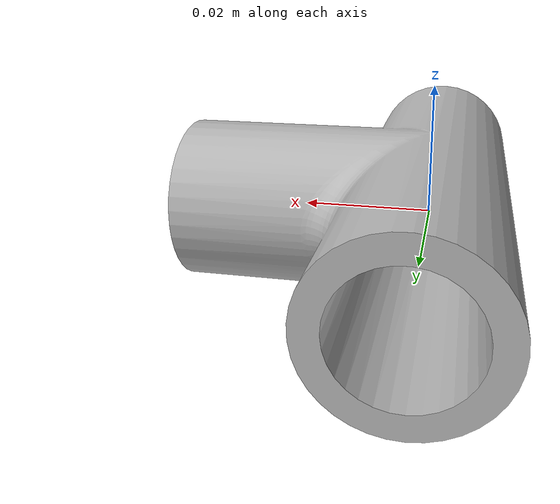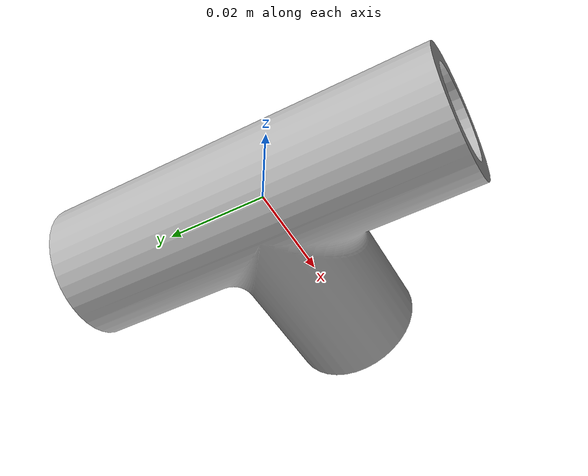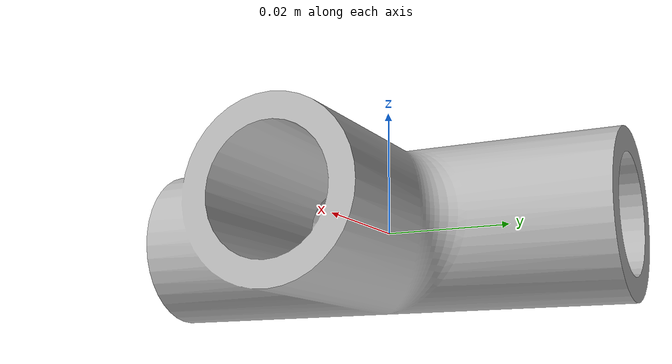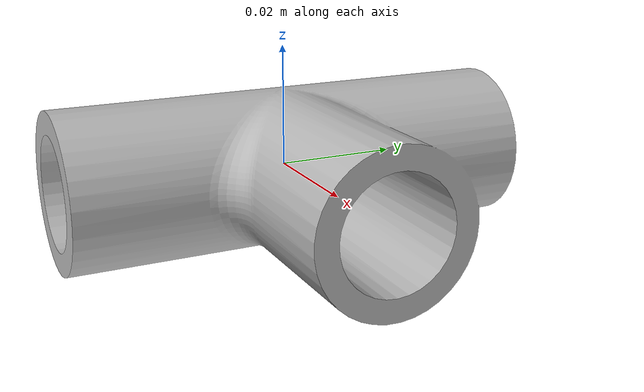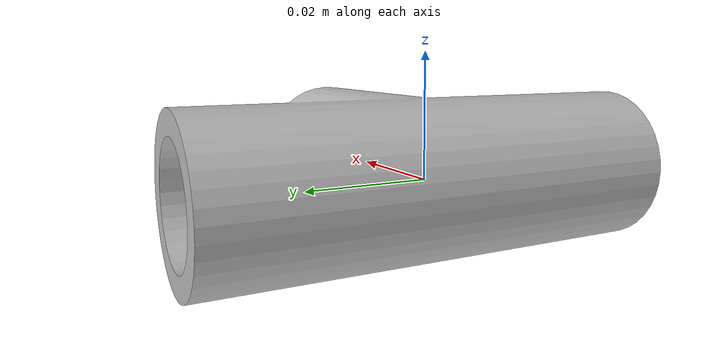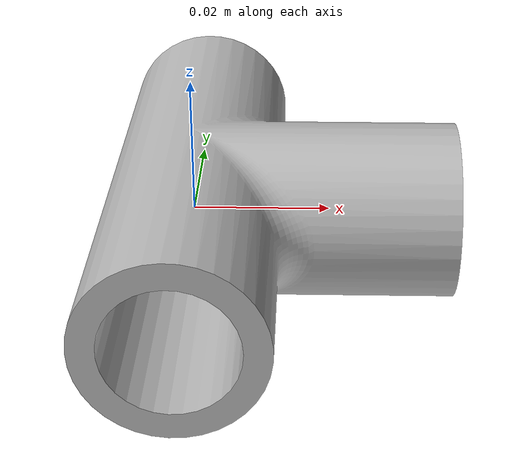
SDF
<?xml version="1.0"?>
<sdf version="1.6">
    <model name="t_pipe">
        <pose>0 0 0 0 0 0</pose>
        <static>true</static>
        <link name="t_pipe">
            <inertial>
                <mass>0.2</mass>
                <inertia>
                    <ixx>0.0005</ixx>
                    <ixy>0.0</ixy>
                    <ixz>0.0</ixz>
                    <iyy>0.0005</iyy>
                    <iyz>0.0</iyz>
                    <izz>0.0005</izz>
                </inertia>
            </inertial>
            <collision name="collishin">
                <geometry>
                    <mesh>
                        <uri>model://t_pipe/meshes/t_pipe_1.stl</uri>
                    </mesh>
                </geometry>
            </collision>
            <visual name="visual">
                <geometry>
                    <mesh>
                        <uri>model://t_pipe/meshes/t_pipe_1.stl</uri>
                    </mesh>
                </geometry>
            </visual>
        </link>
    </model>
</sdf>
